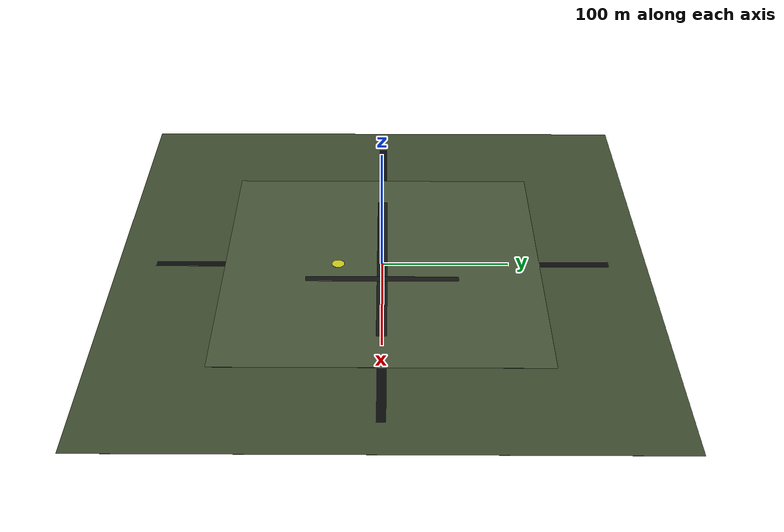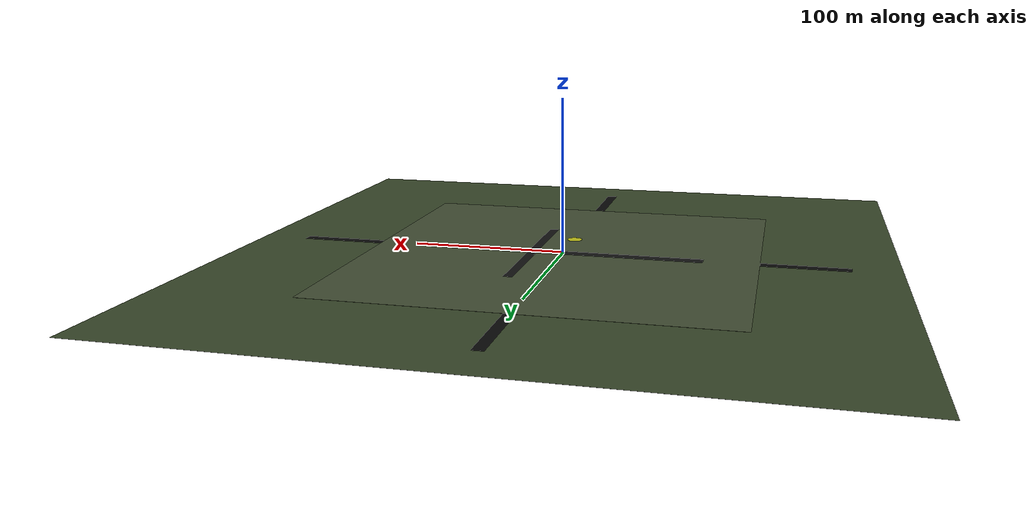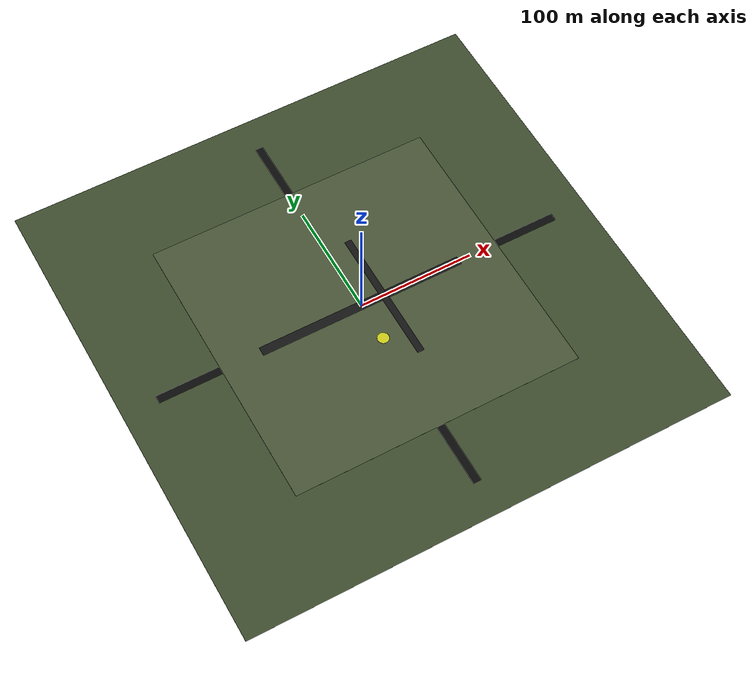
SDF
<sdf version="1.9">
 <world name="battlefield_sar_world_v2">
  <plugin filename="gz-sim-physics-system" name="gz::sim::systems::Physics"/>
  <plugin filename="gz-sim-user-commands-system" name="gz::sim::systems::UserCommands"/>
  <plugin filename="gz-sim-scene-broadcaster-system" name="gz::sim::systems::SceneBroadcaster"/>
  <plugin filename="gz-sim-imu-system" name="gz::sim::systems::Imu"/>
  <plugin filename="gz-sim-air-pressure-system" name="gz::sim::systems::AirPressure"/>
  <plugin filename="gz-sim-magnetometer-system" name="gz::sim::systems::Magnetometer"/>
  <plugin filename="gz-sim-navsat-system" name="gz::sim::systems::NavSat"/>
  <plugin filename="gz-sim-sensors-system" name="gz::sim::systems::Sensors">
   <render_engine>ogre2</render_engine>
  </plugin>
  <gravity>0 0 -9.8</gravity>
  <magnetic_field>6.0e-6 2.3e-5 -4.2e-5</magnetic_field>
  <spherical_coordinates>
   <surface_model>EARTH_WGS84</surface_model>
   <world_frame_orientation>ENU</world_frame_orientation>
   <latitude_deg>47.397742</latitude_deg>
   <longitude_deg>8.545594</longitude_deg>
   <elevation>488.0</elevation>
   <heading_deg>0</heading_deg>
  </spherical_coordinates>
  <scene>
   <ambient>0.45 0.45 0.45 1</ambient>
   <background>0.65 0.75 0.85 1</background>
   <shadows>false</shadows>
  </scene>
  <light name="sun" type="directional">
   <cast_shadows>false</cast_shadows>
   <pose>0 0 100 0 0 0</pose>
   <diffuse>0.9 0.85 0.75 1</diffuse>
   <specular>0.2 0.2 0.2 1</specular>
   <direction>-0.5 0.3 -1</direction>
  </light>
  <model name="ground_plane">
   <static>true</static>
   <link name="link">
    <collision name="collision"><geometry><box><size>250 250 0.1</size></box></geometry></collision>
    <visual name="visual">
     <geometry><box><size>250 250 0.1</size></box></geometry>
     <material><ambient>0.28 0.33 0.22 1</ambient><diffuse>0.28 0.33 0.22 1</diffuse></material>
    </visual>
   </link>
  </model>
  <model name="main_road">
   <static>true</static>
   <pose>0 0 0.06 0 0 0</pose>
   <link name="link">
    <visual name="visual">
     <geometry><box><size>180 8 0.05</size></box></geometry>
     <material><ambient>0.08 0.08 0.08 1</ambient><diffuse>0.08 0.08 0.08 1</diffuse></material>
    </visual>
   </link>
  </model>
  <model name="cross_road">
   <static>true</static>
   <pose>20 0 0.07 0 0 1.5708</pose>
   <link name="link">
    <visual name="visual">
     <geometry><box><size>120 6 0.05</size></box></geometry>
     <material><ambient>0.08 0.08 0.08 1</ambient><diffuse>0.08 0.08 0.08 1</diffuse></material>
    </visual>
   </link>
  </model>
  <model name="landing_zone">
   <static>true</static>
   <pose>0 -35 0.11 0 0 0</pose>
   <link name="link">
    <visual name="visual">
     <geometry><cylinder><radius>5</radius><length>0.03</length></cylinder></geometry>
     <material><ambient>0.8 0.8 0.1 1</ambient><diffuse>0.8 0.8 0.1 1</diffuse></material>
    </visual>
   </link>
  </model>
  <model name="large_realistic_terrain_v2">
   <static>true</static>
   <pose>0.00 0.00 -0.04 0 0 0.000</pose>
   <link name="link">
    <visual name="visual">
     <geometry><box><size>420.00 420.00 0.04</size></box></geometry>
     <material><ambient>0.24 0.30 0.18 1</ambient><diffuse>0.24 0.30 0.18 1</diffuse></material>
    </visual>
    <collision name="collision"><geometry><box><size>420.00 420.00 0.04</size></box></geometry></collision>
   </link>
  </model>
  <model name="north_south_asphalt_road_v2">
   <static>true</static>
   <pose>0.00 0.00 0.01 0 0 0.000</pose>
   <link name="link">
    <visual name="visual">
     <geometry><box><size>7.00 360.00 0.03</size></box></geometry>
     <material><ambient>0.04 0.04 0.04 1</ambient><diffuse>0.04 0.04 0.04 1</diffuse></material>
    </visual>
    <collision name="collision"><geometry><box><size>7.00 360.00 0.03</size></box></geometry></collision>
   </link>
  </model>
  <model name="east_west_asphalt_road_v2">
   <static>true</static>
   <pose>0.00 0.00 0.02 0 0 0.000</pose>
   <link name="link">
    <visual name="visual">
     <geometry><box><size>360.00 7.00 0.03</size></box></geometry>
     <material><ambient>0.04 0.04 0.04 1</ambient><diffuse>0.04 0.04 0.04 1</diffuse></material>
    </visual>
    <collision name="collision"><geometry><box><size>360.00 7.00 0.03</size></box></geometry></collision>
   </link>
  </model>
  <model name="diagonal_dirt_track_v2">
   <static>true</static>
   <pose>-55.00 42.00 0.02 0 0 0.550</pose>
   <link name="link">
    <visual name="visual">
     <geometry><box><size>95.00 4.50 0.03</size></box></geometry>
     <material><ambient>0.25 0.20 0.13 1</ambient><diffuse>0.25 0.20 0.13 1</diffuse></material>
    </visual>
    <collision name="collision"><geometry><box><size>95.00 4.50 0.03</size></box></geometry></collision>
   </link>
  </model>
  <model name="person_vehicle_zone_ground_v2">
   <static>true</static>
   <pose>45.00 -35.00 0.01 0 0 0.000</pose>
   <link name="link">
    <visual name="visual">
     <geometry><box><size>45.00 38.00 0.02</size></box></geometry>
     <material><ambient>0.18 0.22 0.16 1</ambient><diffuse>0.18 0.22 0.16 1</diffuse></material>
    </visual>
    <collision name="collision"><geometry><box><size>45.00 38.00 0.02</size></box></geometry></collision>
   </link>
  </model>
  <model name="fire_smoke_zone_ground_v2">
   <static>true</static>
   <pose>-45.00 38.00 0.01 0 0 0.000</pose>
   <link name="link">
    <visual name="visual">
     <geometry><box><size>42.00 36.00 0.02</size></box></geometry>
     <material><ambient>0.23 0.18 0.14 1</ambient><diffuse>0.23 0.18 0.14 1</diffuse></material>
    </visual>
    <collision name="collision"><geometry><box><size>42.00 36.00 0.02</size></box></geometry></collision>
   </link>
  </model>
  <model name="debris_structure_zone_ground_v2">
   <static>true</static>
   <pose>55.00 45.00 0.01 0 0 0.000</pose>
   <link name="link">
    <visual name="visual">
     <geometry><box><size>48.00 42.00 0.02</size></box></geometry>
     <material><ambient>0.20 0.20 0.18 1</ambient><diffuse>0.20 0.20 0.18 1</diffuse></material>
    </visual>
    <collision name="collision"><geometry><box><size>48.00 42.00 0.02</size></box></geometry></collision>
   </link>
  </model>
  <model name="landing_return_zone_ground_v2">
   <static>true</static>
   <pose>0.00 -60.00 0.01 0 0 0.000</pose>
   <link name="link">
    <visual name="visual">
     <geometry><box><size>28.00 28.00 0.02</size></box></geometry>
     <material><ambient>0.12 0.22 0.12 1</ambient><diffuse>0.12 0.22 0.12 1</diffuse></material>
    </visual>
    <collision name="collision"><geometry><box><size>28.00 28.00 0.02</size></box></geometry></collision>
   </link>
  </model>
 </world>
</sdf>
